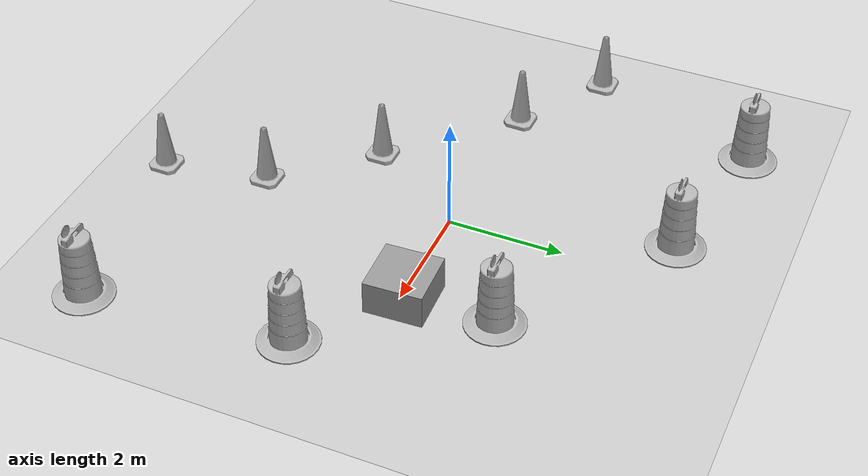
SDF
<sdf version="1.7">
 <world name="default">
  <light name="sun" type="directional">
   <pose>0 0 10 0 -0 0</pose>
   <diffuse>0.8 0.8 0.8 1</diffuse>
   <specular>0.2 0.2 0.2 1</specular>
   <attenuation>
    <range>1000</range>
    <constant>0.9</constant>
    <linear>0.01</linear>
    <quadratic>0.001</quadratic>
   </attenuation>
   <direction>-0.5 0.1 -0.9</direction>
   <spot><inner_angle>0</inner_angle><outer_angle>0</outer_angle><falloff>0</falloff></spot>
  </light>
  <gravity>0 0 -9.8</gravity>
  <magnetic_field>6e-06 2.3e-05 -4.2e-05</magnetic_field>
  <atmosphere type="adiabatic"/>
  <physics type="ode">
   <max_step_size>0.001</max_step_size>
   <real_time_factor>1</real_time_factor>
   <real_time_update_rate>1000</real_time_update_rate>
  </physics>
  <scene><ambient>0.4 0.4 0.4 1</ambient><background>0.7 0.7 0.7 1</background><shadows>1</shadows></scene>
  <audio><device>default</device></audio>
  <spherical_coordinates>
   <surface_model>EARTH_WGS84</surface_model>
   <latitude_deg>0</latitude_deg>
   <longitude_deg>0</longitude_deg>
   <elevation>0</elevation>
   <heading_deg>0</heading_deg>
  </spherical_coordinates>
  <model name="ground_plane">
   <static>1</static>
   <link name="link">
    <collision name="collision">
     <geometry><plane><normal>0 0 1</normal><size>100 100</size></plane></geometry>
     <surface>
      <contact><collide_bitmask>65535</collide_bitmask></contact>
      <friction><ode><mu>100</mu><mu2>50</mu2></ode></friction>
     </surface>
    </collision>
    <visual name="visual">
     <cast_shadows>0</cast_shadows>
     <geometry><plane><normal>0 0 1</normal><size>100 100</size></plane></geometry>
     <material>
      <script><uri>file://media/materials/scripts/gazebo.material</uri><name>Gazebo/Grey</name></script>
     </material>
    </visual>
   </link>
  </model>
  <model name="Construction Barrel">
   <link name="link">
    <inertial>
     <pose>0 0 0.4 0 -0 0</pose>
     <mass>500</mass>
     <inertia><ixx>51.2096</ixx><iyy>51.2096</iyy><izz>25</izz><ixy>0</ixy><ixz>0</ixz><iyz>0</iyz></inertia>
    </inertial>
    <collision name="collision">
     <geometry><mesh><uri>model://construction_barrel/meshes/construction_barrel.dae</uri></mesh></geometry>
    </collision>
    <visual name="visual">
     <geometry><mesh><uri>model://construction_barrel/meshes/construction_barrel.dae</uri></mesh></geometry>
    </visual>
   </link>
   <pose>1.95415 1.60051 -2e-06 7e-06 -4e-06 -3.3e-05</pose>
  </model>
  <model name="Construction Barrel_0">
   <link name="link">
    <inertial>
     <pose>0 0 0.4 0 -0 0</pose>
     <mass>500</mass>
     <inertia><ixx>51.2096</ixx><iyy>51.2096</iyy><izz>25</izz><ixy>0</ixy><ixz>0</ixz><iyz>0</iyz></inertia>
    </inertial>
    <collision name="collision">
     <geometry><mesh><uri>model://construction_barrel/meshes/construction_barrel.dae</uri></mesh></geometry>
    </collision>
    <visual name="visual">
     <geometry><mesh><uri>model://construction_barrel/meshes/construction_barrel.dae</uri></mesh></geometry>
    </visual>
   </link>
   <pose>3.5672 -1.16678 -2e-06 7e-06 -4e-06 -3.3e-05</pose>
  </model>
  <model name="Construction Barrel_1">
   <link name="link">
    <inertial>
     <pose>0 0 0.4 0 -0 0</pose>
     <mass>500</mass>
     <inertia><ixx>51.2096</ixx><iyy>51.2096</iyy><izz>25</izz><ixy>0</ixy><ixz>0</ixz><iyz>0</iyz></inertia>
    </inertial>
    <collision name="collision">
     <geometry><mesh><uri>model://construction_barrel/meshes/construction_barrel.dae</uri></mesh></geometry>
    </collision>
    <visual name="visual">
     <geometry><mesh><uri>model://construction_barrel/meshes/construction_barrel.dae</uri></mesh></geometry>
    </visual>
   </link>
   <pose>3.92711 -4.62834 -2e-06 -7e-06 -4e-06 -4.7e-05</pose>
  </model>
  <model name="Construction Barrel_2">
   <link name="link">
    <inertial>
     <pose>0 0 0.4 0 -0 0</pose>
     <mass>500</mass>
     <inertia><ixx>51.2096</ixx><iyy>51.2096</iyy><izz>25</izz><ixy>0</ixy><ixz>0</ixz><iyz>0</iyz></inertia>
    </inertial>
    <collision name="collision">
     <geometry><mesh><uri>model://construction_barrel/meshes/construction_barrel.dae</uri></mesh></geometry>
    </collision>
    <visual name="visual">
     <geometry><mesh><uri>model://construction_barrel/meshes/construction_barrel.dae</uri></mesh></geometry>
    </visual>
   </link>
   <pose>-0.881452 3.65055 -2e-06 -7e-06 -4e-06 -4.3e-05</pose>
  </model>
  <model name="Construction Barrel_3">
   <link name="link">
    <inertial>
     <pose>0 0 0.4 0 -0 0</pose>
     <mass>500</mass>
     <inertia><ixx>51.2096</ixx><iyy>51.2096</iyy><izz>25</izz><ixy>0</ixy><ixz>0</ixz><iyz>0</iyz></inertia>
    </inertial>
    <collision name="collision">
     <geometry><mesh><uri>model://construction_barrel/meshes/construction_barrel.dae</uri></mesh></geometry>
    </collision>
    <visual name="visual">
     <geometry><mesh><uri>model://construction_barrel/meshes/construction_barrel.dae</uri></mesh></geometry>
    </visual>
   </link>
   <pose>-3.58291 4.13873 -2e-06 -7e-06 -4e-06 -3.8e-05</pose>
  </model>
  <model name="Construction Cone">
   <link name="link">
    <collision name="collision">
     <geometry>
      <mesh><scale>10 10 10</scale><uri>model://construction_cone/meshes/construction_cone.dae</uri></mesh>
     </geometry>
    </collision>
    <visual name="visual">
     <geometry>
      <mesh><scale>10 10 10</scale><uri>model://construction_cone/meshes/construction_cone.dae</uri></mesh>
     </geometry>
    </visual>
    <inertial>
     <inertia><ixx>1</ixx><ixy>0</ixy><ixz>0</ixz><iyy>1</iyy><iyz>0</iyz><izz>1</izz></inertia>
     <mass>1</mass>
    </inertial>
   </link>
   <pose>-1.18754 -1.7728 -0 1e-06 -0 0</pose>
  </model>
  <model name="Construction Cone_0">
   <link name="link">
    <collision name="collision">
     <geometry>
      <mesh><scale>10 10 10</scale><uri>model://construction_cone/meshes/construction_cone.dae</uri></mesh>
     </geometry>
    </collision>
    <visual name="visual">
     <geometry>
      <mesh><scale>10 10 10</scale><uri>model://construction_cone/meshes/construction_cone.dae</uri></mesh>
     </geometry>
    </visual>
    <inertial>
     <inertia><ixx>1</ixx><ixy>0</ixy><ixz>0</ixz><iyy>1</iyy><iyz>0</iyz><izz>1</izz></inertia>
     <mass>1</mass>
    </inertial>
   </link>
   <pose>0.202105 -3.32199 0 -0 -0 -0</pose>
  </model>
  <model name="Construction Cone_1">
   <link name="link">
    <collision name="collision">
     <geometry>
      <mesh><scale>10 10 10</scale><uri>model://construction_cone/meshes/construction_cone.dae</uri></mesh>
     </geometry>
    </collision>
    <visual name="visual">
     <geometry>
      <mesh><scale>10 10 10</scale><uri>model://construction_cone/meshes/construction_cone.dae</uri></mesh>
     </geometry>
    </visual>
    <inertial>
     <inertia><ixx>1</ixx><ixy>0</ixy><ixz>0</ixz><iyy>1</iyy><iyz>0</iyz><izz>1</izz></inertia>
     <mass>1</mass>
    </inertial>
   </link>
   <pose>0.551739 -5.11037 -1e-05 -0 -0 -0</pose>
  </model>
  <model name="Construction Cone_2">
   <link name="link">
    <collision name="collision">
     <geometry>
      <mesh><scale>10 10 10</scale><uri>model://construction_cone/meshes/construction_cone.dae</uri></mesh>
     </geometry>
    </collision>
    <visual name="visual">
     <geometry>
      <mesh><scale>10 10 10</scale><uri>model://construction_cone/meshes/construction_cone.dae</uri></mesh>
     </geometry>
    </visual>
    <inertial>
     <inertia><ixx>1</ixx><ixy>0</ixy><ixz>0</ixz><iyy>1</iyy><iyz>0</iyz><izz>1</izz></inertia>
     <mass>1</mass>
    </inertial>
   </link>
   <pose>-3.06225 0.091811 -3e-06 4e-06 1e-06 -0.014501</pose>
  </model>
  <model name="Construction Cone_3">
   <link name="link">
    <collision name="collision">
     <geometry>
      <mesh><scale>10 10 10</scale><uri>model://construction_cone/meshes/construction_cone.dae</uri></mesh>
     </geometry>
    </collision>
    <visual name="visual">
     <geometry>
      <mesh><scale>10 10 10</scale><uri>model://construction_cone/meshes/construction_cone.dae</uri></mesh>
     </geometry>
    </visual>
    <inertial>
     <inertia><ixx>1</ixx><ixy>0</ixy><ixz>0</ixz><iyy>1</iyy><iyz>0</iyz><izz>1</izz></inertia>
     <mass>1</mass>
    </inertial>
   </link>
   <pose>-4.66837 1.09776 -1e-05 0 -0 0</pose>
  </model>
  <model name="unit_box">
   <pose>1.99847 0.068191 0.086081 0 -0 0.042218</pose>
   <link name="link">
    <inertial>
     <mass>1</mass>
     <inertia>
      <ixx>0.166667</ixx>
      <ixy>0</ixy>
      <ixz>0</ixz>
      <iyy>0.166667</iyy>
      <iyz>0</iyz>
      <izz>0.166667</izz>
     </inertia>
    </inertial>
    <collision name="collision"><geometry><box><size>1 1 1</size></box></geometry></collision>
    <visual name="visual">
     <geometry><box><size>1 1 1</size></box></geometry>
     <material>
      <script><name>Gazebo/Grey</name><uri>file://media/materials/scripts/gazebo.material</uri></script>
     </material>
    </visual>
   </link>
  </model>
  <model name="coke_can">
   <link name="link">
    <inertial>
     <pose>0 0 0.06 0 -0 0</pose>
     <mass>0.39</mass>
     <inertia>
      <ixx>0.00055575</ixx>
      <ixy>0</ixy>
      <ixz>0</ixz>
      <iyy>0.00055575</iyy>
      <iyz>0</iyz>
      <izz>0.0001755</izz>
     </inertia>
    </inertial>
    <collision name="collision">
     <pose>0.003937 0.004724 -0.18 0 -0 0</pose>
     <geometry><mesh><uri>model://coke_can/meshes/coke_can.dae</uri></mesh></geometry>
     <surface>
      <friction><ode><mu>1</mu><mu2>1</mu2></ode></friction>
      <contact><ode><kp>1e+07</kp><kd>1</kd><min_depth>0.001</min_depth><max_vel>0.1</max_vel></ode></contact>
     </surface>
    </collision>
    <visual name="visual">
     <pose>0.003937 0.004724 -0.18 0 -0 0</pose>
     <geometry><mesh><uri>model://coke_can/meshes/coke_can.dae</uri></mesh></geometry>
    </visual>
   </link>
   <pose>0.991974 0.013401 -0.002643 -0.030871 0.001733 0.034926</pose>
  </model>
 </world>
</sdf>
